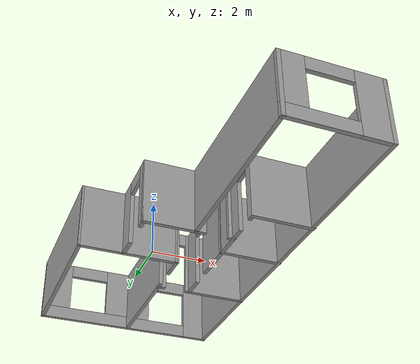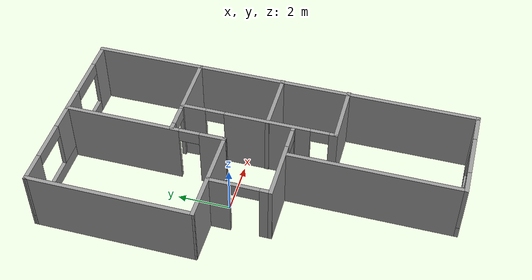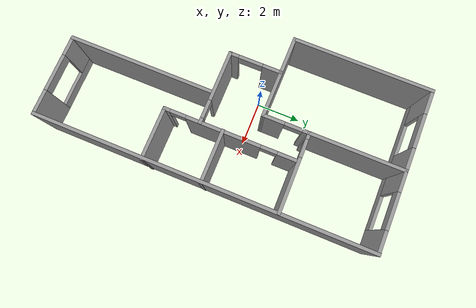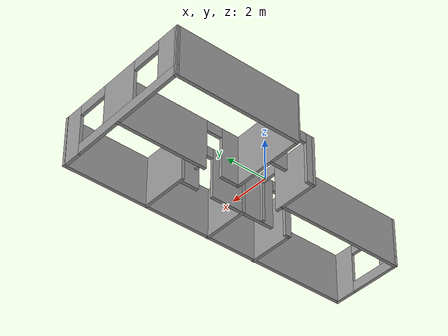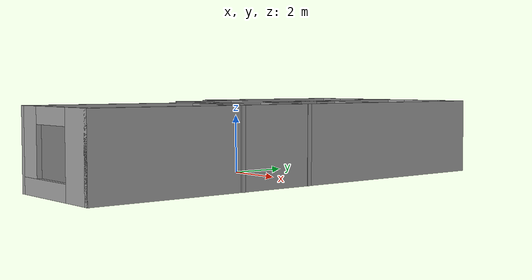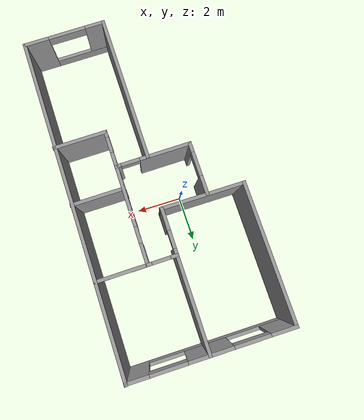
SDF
<?xml version='1.0'?>
<sdf version='1.7'>
  <model name='world_smth'>
    <pose>1.03291 -0.819496 0 0 -0 0</pose>
    <link name='Wall_0'>
      <pose>-0.319484 -0.966154 0 0 -0 0</pose>
      <visual name='Wall_0_Visual_0'>
        <pose>-0.548492 0 1.25 0 -0 0</pose>
        <geometry>
          <box>
            <size>2.30302 0.15 2.5</size>
          </box>
        </geometry>
        <material>
          <script>
            <uri>file://media/materials/scripts/gazebo.material</uri>
            <name>Gazebo/Grey</name>
          </script>
          <ambient>1 1 1 1</ambient>
        </material>
        <meta>
          <layer>0</layer>
        </meta>
      </visual>
      <collision name='Wall_0_Collision_0'>
        <geometry>
          <box>
            <size>2.30302 0.15 2.5</size>
          </box>
        </geometry>
        <pose>-0.548492 0 1.25 0 -0 0</pose>
      </collision>
      <visual name='Wall_0_Visual_1'>
        <pose>1.56149 0 1.25 0 -0 0</pose>
        <geometry>
          <box>
            <size>0.277029 0.15 2.5</size>
          </box>
        </geometry>
        <material>
          <script>
            <uri>file://media/materials/scripts/gazebo.material</uri>
            <name>Gazebo/Grey</name>
          </script>
          <ambient>1 1 1 1</ambient>
        </material>
        <meta>
          <layer>0</layer>
        </meta>
      </visual>
      <collision name='Wall_0_Collision_1'>
        <geometry>
          <box>
            <size>0.277029 0.15 2.5</size>
          </box>
        </geometry>
        <pose>1.56149 0 1.25 0 -0 0</pose>
      </collision>
      <visual name='Wall_0_Visual_2'>
        <pose>1.01299 0 2.25 0 -0 0</pose>
        <geometry>
          <box>
            <size>0.819955 0.15 0.5</size>
          </box>
        </geometry>
        <material>
          <script>
            <uri>file://media/materials/scripts/gazebo.material</uri>
            <name>Gazebo/Grey</name>
          </script>
          <ambient>1 1 1 1</ambient>
        </material>
        <meta>
          <layer>0</layer>
        </meta>
      </visual>
      <collision name='Wall_0_Collision_2'>
        <geometry>
          <box>
            <size>0.819955 0.15 0.5</size>
          </box>
        </geometry>
        <pose>1.01299 0 2.25 0 -0 0</pose>
      </collision>
    </link>
    <link name='Wall_10'>
      <pose>-0.024739 7.41723 0 0 -0 3.13729</pose>
      <visual name='Wall_10_Visual_0'>
        <pose>-3.09586 0 1.25 0 -0 0</pose>
        <geometry>
          <box>
            <size>1.02793 0.15 2.5</size>
          </box>
        </geometry>
        <material>
          <script>
            <uri>file://media/materials/scripts/gazebo.material</uri>
            <name>Gazebo/Grey</name>
          </script>
          <ambient>1 1 1 1</ambient>
        </material>
        <meta>
          <layer>0</layer>
        </meta>
      </visual>
      <collision name='Wall_10_Collision_0'>
        <geometry>
          <box>
            <size>1.02793 0.15 2.5</size>
          </box>
        </geometry>
        <pose>-3.09586 0 1.25 0 -0 0</pose>
      </collision>
      <visual name='Wall_10_Visual_1'>
        <pose>0.513966 0 0.25 0 -0 0</pose>
        <geometry>
          <box>
            <size>6.19172 0.15 0.5</size>
          </box>
        </geometry>
        <material>
          <script>
            <uri>file://media/materials/scripts/gazebo.material</uri>
            <name>Gazebo/Grey</name>
          </script>
          <ambient>1 1 1 1</ambient>
        </material>
        <meta>
          <layer>0</layer>
        </meta>
      </visual>
      <collision name='Wall_10_Collision_1'>
        <geometry>
          <box>
            <size>6.19172 0.15 0.5</size>
          </box>
        </geometry>
        <pose>0.513966 0 0.25 0 -0 0</pose>
      </collision>
      <visual name='Wall_10_Visual_2'>
        <pose>-0.026422 0 1.5 0 -0 0</pose>
        <geometry>
          <box>
            <size>1.92094 0.15 2</size>
          </box>
        </geometry>
        <material>
          <script>
            <uri>file://media/materials/scripts/gazebo.material</uri>
            <name>Gazebo/Grey</name>
          </script>
          <ambient>1 1 1 1</ambient>
        </material>
        <meta>
          <layer>0</layer>
        </meta>
      </visual>
      <collision name='Wall_10_Collision_2'>
        <geometry>
          <box>
            <size>1.92094 0.15 2</size>
          </box>
        </geometry>
        <pose>-0.026422 0 1.5 0 -0 0</pose>
      </collision>
      <visual name='Wall_10_Visual_3'>
        <pose>3.03944 0 1.5 0 -0 0</pose>
        <geometry>
          <box>
            <size>1.14078 0.15 2</size>
          </box>
        </geometry>
        <material>
          <script>
            <uri>file://media/materials/scripts/gazebo.material</uri>
            <name>Gazebo/Grey</name>
          </script>
          <ambient>1 1 1 1</ambient>
        </material>
        <meta>
          <layer>0</layer>
        </meta>
      </visual>
      <collision name='Wall_10_Collision_3'>
        <geometry>
          <box>
            <size>1.14078 0.15 2</size>
          </box>
        </geometry>
        <pose>3.03944 0 1.5 0 -0 0</pose>
      </collision>
      <visual name='Wall_10_Visual_4'>
        <pose>-1.78439 0 2.25 0 -0 0</pose>
        <geometry>
          <box>
            <size>1.595 0.15 0.5</size>
          </box>
        </geometry>
        <material>
          <script>
            <uri>file://media/materials/scripts/gazebo.material</uri>
            <name>Gazebo/Grey</name>
          </script>
          <ambient>1 1 1 1</ambient>
        </material>
        <meta>
          <layer>0</layer>
        </meta>
      </visual>
      <collision name='Wall_10_Collision_4'>
        <geometry>
          <box>
            <size>1.595 0.15 0.5</size>
          </box>
        </geometry>
        <pose>-1.78439 0 2.25 0 -0 0</pose>
      </collision>
      <visual name='Wall_10_Visual_5'>
        <pose>1.70155 0 2.25 0 -0 0</pose>
        <geometry>
          <box>
            <size>1.535 0.15 0.5</size>
          </box>
        </geometry>
        <material>
          <script>
            <uri>file://media/materials/scripts/gazebo.material</uri>
            <name>Gazebo/Grey</name>
          </script>
          <ambient>1 1 1 1</ambient>
        </material>
        <meta>
          <layer>0</layer>
        </meta>
      </visual>
      <collision name='Wall_10_Collision_5'>
        <geometry>
          <box>
            <size>1.535 0.15 0.5</size>
          </box>
        </geometry>
        <pose>1.70155 0 2.25 0 -0 0</pose>
      </collision>
    </link>
    <link name='Wall_12'>
      <collision name='Wall_12_Collision'>
        <geometry>
          <box>
            <size>6.25 0.15 2.5</size>
          </box>
        </geometry>
        <pose>0 0 1.25 0 -0 0</pose>
      </collision>
      <visual name='Wall_12_Visual'>
        <pose>0 0 1.25 0 -0 0</pose>
        <geometry>
          <box>
            <size>6.25 0.15 2.5</size>
          </box>
        </geometry>
        <material>
          <script>
            <uri>file://media/materials/scripts/gazebo.material</uri>
            <name>Gazebo/Grey</name>
          </script>
          <ambient>1 1 1 1</ambient>
        </material>
        <meta>
          <layer>0</layer>
        </meta>
      </visual>
      <pose>-3.55953 4.38244 0 0 -0 -1.5708</pose>
    </link>
    <link name='Wall_13'>
      <collision name='Wall_13_Collision'>
        <geometry>
          <box>
            <size>3.76151 0.15 2.5</size>
          </box>
        </geometry>
        <pose>0 0 1.25 0 -0 0</pose>
      </collision>
      <visual name='Wall_13_Visual'>
        <pose>0 0 1.25 0 -0 0</pose>
        <geometry>
          <box>
            <size>3.76151 0.15 2.5</size>
          </box>
        </geometry>
        <material>
          <script>
            <uri>file://media/materials/scripts/gazebo.material</uri>
            <name>Gazebo/Grey</name>
          </script>
          <ambient>1 1 1 1</ambient>
        </material>
        <meta>
          <layer>0</layer>
        </meta>
      </visual>
      <pose>-1.75381 1.32101 0 0 -0 -0.006333</pose>
    </link>
    <link name='Wall_15'>
      <pose>0.051905 4.35957 0 0 -0 1.5708</pose>
      <visual name='Wall_15_Visual_0'>
        <pose>-2.6173 0 1.25 0 -0 0</pose>
        <geometry>
          <box>
            <size>1.0154 0.15 2.5</size>
          </box>
        </geometry>
        <material>
          <script>
            <uri>file://media/materials/scripts/gazebo.material</uri>
            <name>Gazebo/Grey</name>
          </script>
          <ambient>1 1 1 1</ambient>
        </material>
        <meta>
          <layer>0</layer>
        </meta>
      </visual>
      <collision name='Wall_15_Collision_0'>
        <geometry>
          <box>
            <size>1.0154 0.15 2.5</size>
          </box>
        </geometry>
        <pose>-2.6173 0 1.25 0 -0 0</pose>
      </collision>
      <visual name='Wall_15_Visual_1'>
        <pose>0.897699 0 1.25 0 -0 0</pose>
        <geometry>
          <box>
            <size>4.4546 0.15 2.5</size>
          </box>
        </geometry>
        <material>
          <script>
            <uri>file://media/materials/scripts/gazebo.material</uri>
            <name>Gazebo/Grey</name>
          </script>
          <ambient>1 1 1 1</ambient>
        </material>
        <meta>
          <layer>0</layer>
        </meta>
      </visual>
      <collision name='Wall_15_Collision_1'>
        <geometry>
          <box>
            <size>4.4546 0.15 2.5</size>
          </box>
        </geometry>
        <pose>0.897699 0 1.25 0 -0 0</pose>
      </collision>
      <visual name='Wall_15_Visual_2'>
        <pose>-1.7196 0 2.25 0 -0 0</pose>
        <geometry>
          <box>
            <size>0.78 0.15 0.5</size>
          </box>
        </geometry>
        <material>
          <script>
            <uri>file://media/materials/scripts/gazebo.material</uri>
            <name>Gazebo/Grey</name>
          </script>
          <ambient>1 1 1 1</ambient>
        </material>
        <meta>
          <layer>0</layer>
        </meta>
      </visual>
      <collision name='Wall_15_Collision_2'>
        <geometry>
          <box>
            <size>0.78 0.15 0.5</size>
          </box>
        </geometry>
        <pose>-1.7196 0 2.25 0 -0 0</pose>
      </collision>
    </link>
    <link name='Wall_17'>
      <pose>1.78373 3.32057 0 0 -0 0</pose>
      <visual name='Wall_17_Visual_0'>
        <pose>-1.62794 0 1.25 0 -0 0</pose>
        <geometry>
          <box>
            <size>0.344118 0.15 2.5</size>
          </box>
        </geometry>
        <material>
          <script>
            <uri>file://media/materials/scripts/gazebo.material</uri>
            <name>Gazebo/Grey</name>
          </script>
          <ambient>1 1 1 1</ambient>
        </material>
        <meta>
          <layer>0</layer>
        </meta>
      </visual>
      <collision name='Wall_17_Collision_0'>
        <geometry>
          <box>
            <size>0.344118 0.15 2.5</size>
          </box>
        </geometry>
        <pose>-1.62794 0 1.25 0 -0 0</pose>
      </collision>
      <visual name='Wall_17_Visual_1'>
        <pose>0.572059 0 1.25 0 -0 0</pose>
        <geometry>
          <box>
            <size>2.45588 0.15 2.5</size>
          </box>
        </geometry>
        <material>
          <script>
            <uri>file://media/materials/scripts/gazebo.material</uri>
            <name>Gazebo/Grey</name>
          </script>
          <ambient>1 1 1 1</ambient>
        </material>
        <meta>
          <layer>0</layer>
        </meta>
      </visual>
      <collision name='Wall_17_Collision_1'>
        <geometry>
          <box>
            <size>2.45588 0.15 2.5</size>
          </box>
        </geometry>
        <pose>0.572059 0 1.25 0 -0 0</pose>
      </collision>
      <visual name='Wall_17_Visual_2'>
        <pose>-1.05588 0 2.25 0 -0 0</pose>
        <geometry>
          <box>
            <size>0.8 0.15 0.5</size>
          </box>
        </geometry>
        <material>
          <script>
            <uri>file://media/materials/scripts/gazebo.material</uri>
            <name>Gazebo/Grey</name>
          </script>
          <ambient>1 1 1 1</ambient>
        </material>
        <meta>
          <layer>0</layer>
        </meta>
      </visual>
      <collision name='Wall_17_Collision_2'>
        <geometry>
          <box>
            <size>0.8 0.15 0.5</size>
          </box>
        </geometry>
        <pose>-1.05588 0 2.25 0 -0 0</pose>
      </collision>
    </link>
    <link name='Wall_20'>
      <collision name='Wall_20_Collision'>
        <geometry>
          <box>
            <size>2.4 0.15 2.5</size>
          </box>
        </geometry>
        <pose>0 0 1.25 0 -0 0</pose>
      </collision>
      <visual name='Wall_20_Visual'>
        <pose>0 0 1.25 0 -0 0</pose>
        <geometry>
          <box>
            <size>2.4 0.15 2.5</size>
          </box>
        </geometry>
        <material>
          <script>
            <uri>file://media/materials/scripts/gazebo.material</uri>
            <name>Gazebo/Grey</name>
          </script>
          <ambient>1 1 1 1</ambient>
        </material>
        <meta>
          <layer>0</layer>
        </meta>
      </visual>
      <pose>2.41739 0.023202 0 0 -0 0</pose>
    </link>
    <link name='Wall_23'>
      <pose>1.72526 -7.43276 0 0 -0 3.14159</pose>
      <visual name='Wall_23_Visual_0'>
        <pose>-1.29584 0 1.25 0 -0 0</pose>
        <geometry>
          <box>
            <size>1.15833 0.15 2.5</size>
          </box>
        </geometry>
        <material>
          <script>
            <uri>file://media/materials/scripts/gazebo.material</uri>
            <name>Gazebo/Grey</name>
          </script>
          <ambient>1 1 1 1</ambient>
        </material>
        <meta>
          <layer>0</layer>
        </meta>
      </visual>
      <collision name='Wall_23_Collision_0'>
        <geometry>
          <box>
            <size>1.15833 0.15 2.5</size>
          </box>
        </geometry>
        <pose>-1.29584 0 1.25 0 -0 0</pose>
      </collision>
      <visual name='Wall_23_Visual_1'>
        <pose>0.579165 0 0.25 0 -0 0</pose>
        <geometry>
          <box>
            <size>2.59167 0.15 0.5</size>
          </box>
        </geometry>
        <material>
          <script>
            <uri>file://media/materials/scripts/gazebo.material</uri>
            <name>Gazebo/Grey</name>
          </script>
          <ambient>1 1 1 1</ambient>
        </material>
        <meta>
          <layer>0</layer>
        </meta>
      </visual>
      <collision name='Wall_23_Collision_1'>
        <geometry>
          <box>
            <size>2.59167 0.15 0.5</size>
          </box>
        </geometry>
        <pose>0.579165 0 0.25 0 -0 0</pose>
      </collision>
      <visual name='Wall_23_Visual_2'>
        <pose>1.41416 0 1.5 0 -0 0</pose>
        <geometry>
          <box>
            <size>0.92167 0.15 2</size>
          </box>
        </geometry>
        <material>
          <script>
            <uri>file://media/materials/scripts/gazebo.material</uri>
            <name>Gazebo/Grey</name>
          </script>
          <ambient>1 1 1 1</ambient>
        </material>
        <meta>
          <layer>0</layer>
        </meta>
      </visual>
      <collision name='Wall_23_Collision_2'>
        <geometry>
          <box>
            <size>0.92167 0.15 2</size>
          </box>
        </geometry>
        <pose>1.41416 0 1.5 0 -0 0</pose>
      </collision>
      <visual name='Wall_23_Visual_3'>
        <pose>0.11833 0 2.25 0 -0 0</pose>
        <geometry>
          <box>
            <size>1.67 0.15 0.5</size>
          </box>
        </geometry>
        <material>
          <script>
            <uri>file://media/materials/scripts/gazebo.material</uri>
            <name>Gazebo/Grey</name>
          </script>
          <ambient>1 1 1 1</ambient>
        </material>
        <meta>
          <layer>0</layer>
        </meta>
      </visual>
      <collision name='Wall_23_Collision_3'>
        <geometry>
          <box>
            <size>1.67 0.15 0.5</size>
          </box>
        </geometry>
        <pose>0.11833 0 2.25 0 -0 0</pose>
      </collision>
    </link>
    <link name='Wall_24'>
      <collision name='Wall_24_Collision'>
        <geometry>
          <box>
            <size>6.6 0.15 2.5</size>
          </box>
        </geometry>
        <pose>0 0 1.25 0 -0 0</pose>
      </collision>
      <visual name='Wall_24_Visual'>
        <pose>0 0 1.25 0 -0 0</pose>
        <geometry>
          <box>
            <size>6.6 0.15 2.5</size>
          </box>
        </geometry>
        <material>
          <script>
            <uri>file://media/materials/scripts/gazebo.material</uri>
            <name>Gazebo/Grey</name>
          </script>
          <ambient>1 1 1 1</ambient>
        </material>
        <meta>
          <layer>0</layer>
        </meta>
      </visual>
      <pose>-0.074739 -4.20777 0 0 -0 1.5708</pose>
    </link>
    <link name='Wall_26'>
      <pose>-1.94448 0.158846 0 0 -0 1.5708</pose>
      <visual name='Wall_26_Visual_0'>
        <pose>-0.967289 0 1.25 0 -0 0</pose>
        <geometry>
          <box>
            <size>0.465422 0.15 2.5</size>
          </box>
        </geometry>
        <material>
          <script>
            <uri>file://media/materials/scripts/gazebo.material</uri>
            <name>Gazebo/Grey</name>
          </script>
          <ambient>1 1 1 1</ambient>
        </material>
        <meta>
          <layer>0</layer>
        </meta>
      </visual>
      <collision name='Wall_26_Collision_0'>
        <geometry>
          <box>
            <size>0.465422 0.15 2.5</size>
          </box>
        </geometry>
        <pose>-0.967289 0 1.25 0 -0 0</pose>
      </collision>
      <visual name='Wall_26_Visual_1'>
        <pose>0.771333 0 1.25 0 -0 0</pose>
        <geometry>
          <box>
            <size>0.857334 0.15 2.5</size>
          </box>
        </geometry>
        <material>
          <script>
            <uri>file://media/materials/scripts/gazebo.material</uri>
            <name>Gazebo/Grey</name>
          </script>
          <ambient>1 1 1 1</ambient>
        </material>
        <meta>
          <layer>0</layer>
        </meta>
      </visual>
      <collision name='Wall_26_Collision_1'>
        <geometry>
          <box>
            <size>0.857334 0.15 2.5</size>
          </box>
        </geometry>
        <pose>0.771333 0 1.25 0 -0 0</pose>
      </collision>
      <visual name='Wall_26_Visual_2'>
        <pose>-0.195956 0 2.25 0 -0 0</pose>
        <geometry>
          <box>
            <size>1.07724 0.15 0.5</size>
          </box>
        </geometry>
        <material>
          <script>
            <uri>file://media/materials/scripts/gazebo.material</uri>
            <name>Gazebo/Grey</name>
          </script>
          <ambient>1 1 1 1</ambient>
        </material>
        <meta>
          <layer>0</layer>
        </meta>
      </visual>
      <collision name='Wall_26_Collision_2'>
        <geometry>
          <box>
            <size>1.07724 0.15 0.5</size>
          </box>
        </geometry>
        <pose>-0.195956 0 2.25 0 -0 0</pose>
      </collision>
    </link>
    <link name='Wall_4'>
      <pose>1.31 0.376082 0 0 -0 -1.5708</pose>
      <visual name='Wall_4_Visual_0'>
        <pose>-2.51342 0 1.25 0 -0 0</pose>
        <geometry>
          <box>
            <size>0.973151 0.15 2.5</size>
          </box>
        </geometry>
        <material>
          <script>
            <uri>file://media/materials/scripts/gazebo.material</uri>
            <name>Gazebo/Grey</name>
          </script>
          <ambient>1 1 1 1</ambient>
        </material>
        <meta>
          <layer>0</layer>
        </meta>
      </visual>
      <collision name='Wall_4_Collision_0'>
        <geometry>
          <box>
            <size>0.973151 0.15 2.5</size>
          </box>
        </geometry>
        <pose>-2.51342 0 1.25 0 -0 0</pose>
      </collision>
      <visual name='Wall_4_Visual_1'>
        <pose>0.335751 0 1.25 0 -0 0</pose>
        <geometry>
          <box>
            <size>3.2852 0.15 2.5</size>
          </box>
        </geometry>
        <material>
          <script>
            <uri>file://media/materials/scripts/gazebo.material</uri>
            <name>Gazebo/Grey</name>
          </script>
          <ambient>1 1 1 1</ambient>
        </material>
        <meta>
          <layer>0</layer>
        </meta>
      </visual>
      <collision name='Wall_4_Collision_1'>
        <geometry>
          <box>
            <size>3.2852 0.15 2.5</size>
          </box>
        </geometry>
        <pose>0.335751 0 1.25 0 -0 0</pose>
      </collision>
      <visual name='Wall_4_Visual_2'>
        <pose>2.83726 0 1.25 0 -0 0</pose>
        <geometry>
          <box>
            <size>0.325478 0.15 2.5</size>
          </box>
        </geometry>
        <material>
          <script>
            <uri>file://media/materials/scripts/gazebo.material</uri>
            <name>Gazebo/Grey</name>
          </script>
          <ambient>1 1 1 1</ambient>
        </material>
        <meta>
          <layer>0</layer>
        </meta>
      </visual>
      <collision name='Wall_4_Collision_2'>
        <geometry>
          <box>
            <size>0.325478 0.15 2.5</size>
          </box>
        </geometry>
        <pose>2.83726 0 1.25 0 -0 0</pose>
      </collision>
      <visual name='Wall_4_Visual_3'>
        <pose>-1.66685 0 2.25 0 -0 0</pose>
        <geometry>
          <box>
            <size>0.72 0.15 0.5</size>
          </box>
        </geometry>
        <material>
          <script>
            <uri>file://media/materials/scripts/gazebo.material</uri>
            <name>Gazebo/Grey</name>
          </script>
          <ambient>1 1 1 1</ambient>
        </material>
        <meta>
          <layer>0</layer>
        </meta>
      </visual>
      <collision name='Wall_4_Collision_3'>
        <geometry>
          <box>
            <size>0.72 0.15 0.5</size>
          </box>
        </geometry>
        <pose>-1.66685 0 2.25 0 -0 0</pose>
      </collision>
      <visual name='Wall_4_Visual_4'>
        <pose>2.32644 0 2.25 0 -0 0</pose>
        <geometry>
          <box>
            <size>0.69617 0.15 0.5</size>
          </box>
        </geometry>
        <material>
          <script>
            <uri>file://media/materials/scripts/gazebo.material</uri>
            <name>Gazebo/Grey</name>
          </script>
          <ambient>1 1 1 1</ambient>
        </material>
        <meta>
          <layer>0</layer>
        </meta>
      </visual>
      <collision name='Wall_4_Collision_4'>
        <geometry>
          <box>
            <size>0.69617 0.15 0.5</size>
          </box>
        </geometry>
        <pose>2.32644 0 2.25 0 -0 0</pose>
      </collision>
    </link>
    <link name='Wall_6'>
      <collision name='Wall_6_Collision'>
        <geometry>
          <box>
            <size>2.4 0.15 2.5</size>
          </box>
        </geometry>
        <pose>0 0 1.25 0 -0 0</pose>
      </collision>
      <visual name='Wall_6_Visual'>
        <pose>0 0 1.25 0 -0 0</pose>
        <geometry>
          <box>
            <size>2.4 0.15 2.5</size>
          </box>
        </geometry>
        <material>
          <script>
            <uri>file://media/materials/scripts/gazebo.material</uri>
            <name>Gazebo/Grey</name>
          </script>
          <ambient>1 1 1 1</ambient>
        </material>
        <meta>
          <layer>0</layer>
        </meta>
      </visual>
      <pose>2.435 -2.54892 0 0 -0 0</pose>
    </link>
    <link name='Wall_8'>
      <collision name='Wall_8_Collision'>
        <geometry>
          <box>
            <size>15 0.15 2.5</size>
          </box>
        </geometry>
        <pose>0 0 1.25 0 -0 0</pose>
      </collision>
      <visual name='Wall_8_Visual'>
        <pose>0 0 1.25 0 -0 0</pose>
        <geometry>
          <box>
            <size>15 0.15 2.5</size>
          </box>
        </geometry>
        <material>
          <script>
            <uri>file://media/materials/scripts/gazebo.material</uri>
            <name>Gazebo/Grey</name>
          </script>
          <ambient>1 1 1 1</ambient>
        </material>
        <meta>
          <layer>0</layer>
        </meta>
      </visual>
      <pose>3.52526 -0.007765 0 0 -0 1.5708</pose>
    </link>
    <static>1</static>
  </model>
</sdf>
